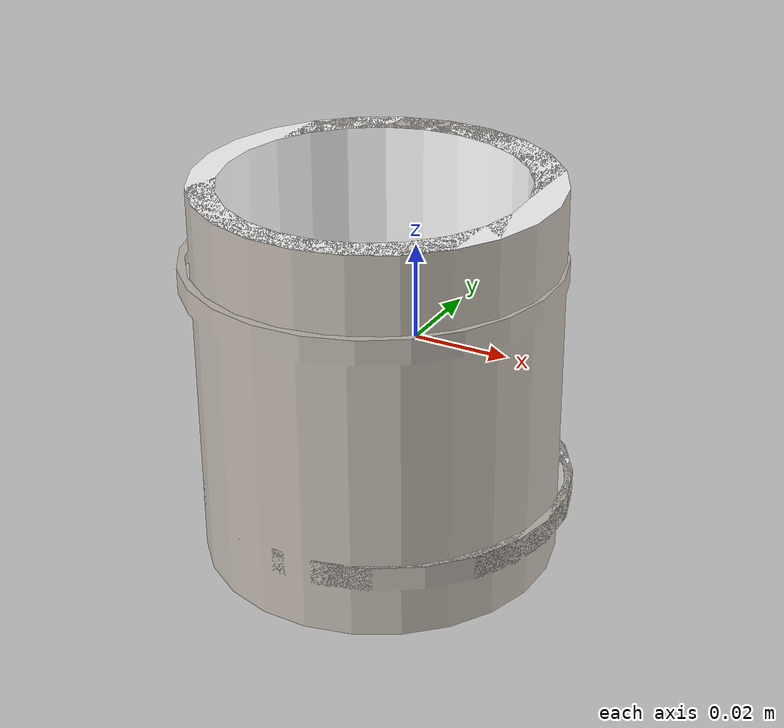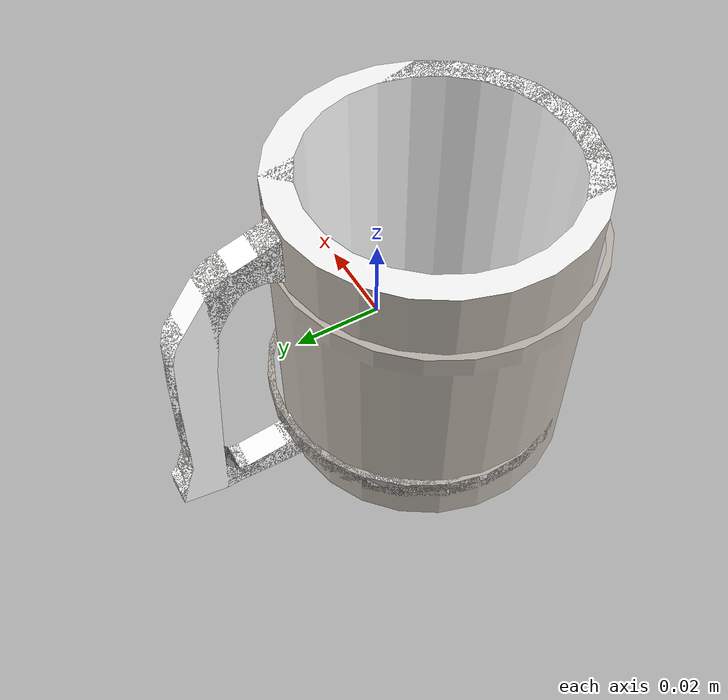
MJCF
<mujoco model="c2eacc52">
  <asset>
  <texture file="../../../textures/ceramic.png" name="tex-c2eacc52" type="2d" />
  <material name="c2eacc52" reflectance="0.5" texrepeat="1 1" texture="tex-c2eacc52" texuniform="false" />
  <mesh file="visual/model_normalized_0.obj" name="model_normalized_0_vis" scale="0.15 0.15 0.15" /><mesh file="visual/model_normalized_1.obj" name="model_normalized_1_vis" scale="0.15 0.15 0.15" /><mesh file="visual/model_normalized_2.obj" name="model_normalized_2_vis" scale="0.15 0.15 0.15" /><mesh file="collision/model_normalized_collision_13.obj" name="model_normalized_collision_13._coll" scale="0.15 0.15 0.15" /><mesh file="collision/model_normalized_collision_16.obj" name="model_normalized_collision_16._coll" scale="0.15 0.15 0.15" /><mesh file="collision/model_normalized_collision_30.obj" name="model_normalized_collision_30._coll" scale="0.15 0.15 0.15" /><mesh file="collision/model_normalized_collision_21.obj" name="model_normalized_collision_21._coll" scale="0.15 0.15 0.15" /><mesh file="collision/model_normalized_collision_1.obj" name="model_normalized_collision_1._coll" scale="0.15 0.15 0.15" /><mesh file="collision/model_normalized_collision_20.obj" name="model_normalized_collision_20._coll" scale="0.15 0.15 0.15" /><mesh file="collision/model_normalized_collision_27.obj" name="model_normalized_collision_27._coll" scale="0.15 0.15 0.15" /><mesh file="collision/model_normalized_collision_10.obj" name="model_normalized_collision_10._coll" scale="0.15 0.15 0.15" /><mesh file="collision/model_normalized_collision_24.obj" name="model_normalized_collision_24._coll" scale="0.15 0.15 0.15" /><mesh file="collision/model_normalized_collision_28.obj" name="model_normalized_collision_28._coll" scale="0.15 0.15 0.15" /><mesh file="collision/model_normalized_collision_25.obj" name="model_normalized_collision_25._coll" scale="0.15 0.15 0.15" /><mesh file="collision/model_normalized_collision_23.obj" name="model_normalized_collision_23._coll" scale="0.15 0.15 0.15" /><mesh file="collision/model_normalized_collision_6.obj" name="model_normalized_collision_6._coll" scale="0.15 0.15 0.15" /><mesh file="collision/model_normalized_collision_8.obj" name="model_normalized_collision_8._coll" scale="0.15 0.15 0.15" /><mesh file="collision/model_normalized_collision_2.obj" name="model_normalized_collision_2._coll" scale="0.15 0.15 0.15" /><mesh file="collision/model_normalized_collision_12.obj" name="model_normalized_collision_12._coll" scale="0.15 0.15 0.15" /><mesh file="collision/model_normalized_collision_4.obj" name="model_normalized_collision_4._coll" scale="0.15 0.15 0.15" /><mesh file="collision/model_normalized_collision_19.obj" name="model_normalized_collision_19._coll" scale="0.15 0.15 0.15" /><mesh file="collision/model_normalized_collision_5.obj" name="model_normalized_collision_5._coll" scale="0.15 0.15 0.15" /><mesh file="collision/model_normalized_collision_14.obj" name="model_normalized_collision_14._coll" scale="0.15 0.15 0.15" /><mesh file="collision/model_normalized_collision_11.obj" name="model_normalized_collision_11._coll" scale="0.15 0.15 0.15" /><mesh file="collision/model_normalized_collision_15.obj" name="model_normalized_collision_15._coll" scale="0.15 0.15 0.15" /><mesh file="collision/model_normalized_collision_18.obj" name="model_normalized_collision_18._coll" scale="0.15 0.15 0.15" /><mesh file="collision/model_normalized_collision_29.obj" name="model_normalized_collision_29._coll" scale="0.15 0.15 0.15" /><mesh file="collision/model_normalized_collision_26.obj" name="model_normalized_collision_26._coll" scale="0.15 0.15 0.15" /><mesh file="collision/model_normalized_collision_17.obj" name="model_normalized_collision_17._coll" scale="0.15 0.15 0.15" /><mesh file="collision/model_normalized_collision_31.obj" name="model_normalized_collision_31._coll" scale="0.15 0.15 0.15" /><mesh file="collision/model_normalized_collision_3.obj" name="model_normalized_collision_3._coll" scale="0.15 0.15 0.15" /><mesh file="collision/model_normalized_collision_9.obj" name="model_normalized_collision_9._coll" scale="0.15 0.15 0.15" /><mesh file="collision/model_normalized_collision_22.obj" name="model_normalized_collision_22._coll" scale="0.15 0.15 0.15" /><mesh file="collision/model_normalized_collision_7.obj" name="model_normalized_collision_7._coll" scale="0.15 0.15 0.15" /><mesh file="collision/model_normalized_collision_0.obj" name="model_normalized_collision_0._coll" scale="0.15 0.15 0.15" /><texture type="2d" name="texture0" file="visual/texture0.png" /><texture type="2d" name="texture1" file="visual/texture1.png" /><material name="material_0_1_8" texture="texture0" specular="0.4000000000000001" shininess="0.01" /><material name="material_1_24" specular="0.4000000000000001" shininess="0.01" rgba="1 1 1 1.0" /><material name="material_2_2_8" texture="texture1" specular="0.4000000000000001" shininess="0.01" /></asset>
  <worldbody>
    <body>
      <body name="object">
      <geom solimp="0.998 0.998 0.001" solref="0.001 1" density="100" friction="0.95 0.3 0.1" type="mesh" mesh="model_normalized_0_vis" conaffinity="0" contype="0" group="1" material="material_2_2_8" /><geom solimp="0.998 0.998 0.001" solref="0.001 1" density="100" friction="0.95 0.3 0.1" type="mesh" mesh="model_normalized_1_vis" conaffinity="0" contype="0" group="1" material="material_1_24" /><geom solimp="0.998 0.998 0.001" solref="0.001 1" density="100" friction="0.95 0.3 0.1" type="mesh" mesh="model_normalized_2_vis" conaffinity="0" contype="0" group="1" material="material_0_1_8" /><geom solimp="0.998 0.998 0.001" solref="0.001 1" density="100" friction="0.95 0.3 0.1" type="mesh" mesh="model_normalized_collision_13._coll" group="0" rgba="0.8 0.8 0.8 0.0" /><geom solimp="0.998 0.998 0.001" solref="0.001 1" density="100" friction="0.95 0.3 0.1" type="mesh" mesh="model_normalized_collision_16._coll" group="0" rgba="0.8 0.8 0.8 0.0" /><geom solimp="0.998 0.998 0.001" solref="0.001 1" density="100" friction="0.95 0.3 0.1" type="mesh" mesh="model_normalized_collision_30._coll" group="0" rgba="0.8 0.8 0.8 0.0" /><geom solimp="0.998 0.998 0.001" solref="0.001 1" density="100" friction="0.95 0.3 0.1" type="mesh" mesh="model_normalized_collision_21._coll" group="0" rgba="0.8 0.8 0.8 0.0" /><geom solimp="0.998 0.998 0.001" solref="0.001 1" density="100" friction="0.95 0.3 0.1" type="mesh" mesh="model_normalized_collision_1._coll" group="0" rgba="0.8 0.8 0.8 0.0" /><geom solimp="0.998 0.998 0.001" solref="0.001 1" density="100" friction="0.95 0.3 0.1" type="mesh" mesh="model_normalized_collision_20._coll" group="0" rgba="0.8 0.8 0.8 0.0" /><geom solimp="0.998 0.998 0.001" solref="0.001 1" density="100" friction="0.95 0.3 0.1" type="mesh" mesh="model_normalized_collision_27._coll" group="0" rgba="0.8 0.8 0.8 0.0" /><geom solimp="0.998 0.998 0.001" solref="0.001 1" density="100" friction="0.95 0.3 0.1" type="mesh" mesh="model_normalized_collision_10._coll" group="0" rgba="0.8 0.8 0.8 0.0" /><geom solimp="0.998 0.998 0.001" solref="0.001 1" density="100" friction="0.95 0.3 0.1" type="mesh" mesh="model_normalized_collision_24._coll" group="0" rgba="0.8 0.8 0.8 0.0" /><geom solimp="0.998 0.998 0.001" solref="0.001 1" density="100" friction="0.95 0.3 0.1" type="mesh" mesh="model_normalized_collision_28._coll" group="0" rgba="0.8 0.8 0.8 0.0" /><geom solimp="0.998 0.998 0.001" solref="0.001 1" density="100" friction="0.95 0.3 0.1" type="mesh" mesh="model_normalized_collision_25._coll" group="0" rgba="0.8 0.8 0.8 0.0" /><geom solimp="0.998 0.998 0.001" solref="0.001 1" density="100" friction="0.95 0.3 0.1" type="mesh" mesh="model_normalized_collision_23._coll" group="0" rgba="0.8 0.8 0.8 0.0" /><geom solimp="0.998 0.998 0.001" solref="0.001 1" density="100" friction="0.95 0.3 0.1" type="mesh" mesh="model_normalized_collision_6._coll" group="0" rgba="0.8 0.8 0.8 0.0" /><geom solimp="0.998 0.998 0.001" solref="0.001 1" density="100" friction="0.95 0.3 0.1" type="mesh" mesh="model_normalized_collision_8._coll" group="0" rgba="0.8 0.8 0.8 0.0" /><geom solimp="0.998 0.998 0.001" solref="0.001 1" density="100" friction="0.95 0.3 0.1" type="mesh" mesh="model_normalized_collision_2._coll" group="0" rgba="0.8 0.8 0.8 0.0" /><geom solimp="0.998 0.998 0.001" solref="0.001 1" density="100" friction="0.95 0.3 0.1" type="mesh" mesh="model_normalized_collision_12._coll" group="0" rgba="0.8 0.8 0.8 0.0" /><geom solimp="0.998 0.998 0.001" solref="0.001 1" density="100" friction="0.95 0.3 0.1" type="mesh" mesh="model_normalized_collision_4._coll" group="0" rgba="0.8 0.8 0.8 0.0" /><geom solimp="0.998 0.998 0.001" solref="0.001 1" density="100" friction="0.95 0.3 0.1" type="mesh" mesh="model_normalized_collision_19._coll" group="0" rgba="0.8 0.8 0.8 0.0" /><geom solimp="0.998 0.998 0.001" solref="0.001 1" density="100" friction="0.95 0.3 0.1" type="mesh" mesh="model_normalized_collision_5._coll" group="0" rgba="0.8 0.8 0.8 0.0" /><geom solimp="0.998 0.998 0.001" solref="0.001 1" density="100" friction="0.95 0.3 0.1" type="mesh" mesh="model_normalized_collision_14._coll" group="0" rgba="0.8 0.8 0.8 0.0" /><geom solimp="0.998 0.998 0.001" solref="0.001 1" density="100" friction="0.95 0.3 0.1" type="mesh" mesh="model_normalized_collision_11._coll" group="0" rgba="0.8 0.8 0.8 0.0" /><geom solimp="0.998 0.998 0.001" solref="0.001 1" density="100" friction="0.95 0.3 0.1" type="mesh" mesh="model_normalized_collision_15._coll" group="0" rgba="0.8 0.8 0.8 0.0" /><geom solimp="0.998 0.998 0.001" solref="0.001 1" density="100" friction="0.95 0.3 0.1" type="mesh" mesh="model_normalized_collision_18._coll" group="0" rgba="0.8 0.8 0.8 0.0" /><geom solimp="0.998 0.998 0.001" solref="0.001 1" density="100" friction="0.95 0.3 0.1" type="mesh" mesh="model_normalized_collision_29._coll" group="0" rgba="0.8 0.8 0.8 0.0" /><geom solimp="0.998 0.998 0.001" solref="0.001 1" density="100" friction="0.95 0.3 0.1" type="mesh" mesh="model_normalized_collision_26._coll" group="0" rgba="0.8 0.8 0.8 0.0" /><geom solimp="0.998 0.998 0.001" solref="0.001 1" density="100" friction="0.95 0.3 0.1" type="mesh" mesh="model_normalized_collision_17._coll" group="0" rgba="0.8 0.8 0.8 0.0" /><geom solimp="0.998 0.998 0.001" solref="0.001 1" density="100" friction="0.95 0.3 0.1" type="mesh" mesh="model_normalized_collision_31._coll" group="0" rgba="0.8 0.8 0.8 0.0" /><geom solimp="0.998 0.998 0.001" solref="0.001 1" density="100" friction="0.95 0.3 0.1" type="mesh" mesh="model_normalized_collision_3._coll" group="0" rgba="0.8 0.8 0.8 0.0" /><geom solimp="0.998 0.998 0.001" solref="0.001 1" density="100" friction="0.95 0.3 0.1" type="mesh" mesh="model_normalized_collision_9._coll" group="0" rgba="0.8 0.8 0.8 0.0" /><geom solimp="0.998 0.998 0.001" solref="0.001 1" density="100" friction="0.95 0.3 0.1" type="mesh" mesh="model_normalized_collision_22._coll" group="0" rgba="0.8 0.8 0.8 0.0" /><geom solimp="0.998 0.998 0.001" solref="0.001 1" density="100" friction="0.95 0.3 0.1" type="mesh" mesh="model_normalized_collision_7._coll" group="0" rgba="0.8 0.8 0.8 0.0" /><geom solimp="0.998 0.998 0.001" solref="0.001 1" density="100" friction="0.95 0.3 0.1" type="mesh" mesh="model_normalized_collision_0._coll" group="0" rgba="0.8 0.8 0.8 0.0" /></body>
      <site rgba="0 0 0 0" size="0.005" pos="-0.00097666275 0.002045003475 -0.039153452250000005" name="bottom_site" />
      <site rgba="0 0 0 0" size="0.005" pos="-0.00097666275 0.002045003475 0.03793154955" name="top_site" />
      <site rgba="0 0 0 0" size="0.005" pos="0.036363746249999995 0.053831098949999996 -0.0006109513500000024" name="horizontal_radius_site" />
    </body>
  </worldbody>
</mujoco>
